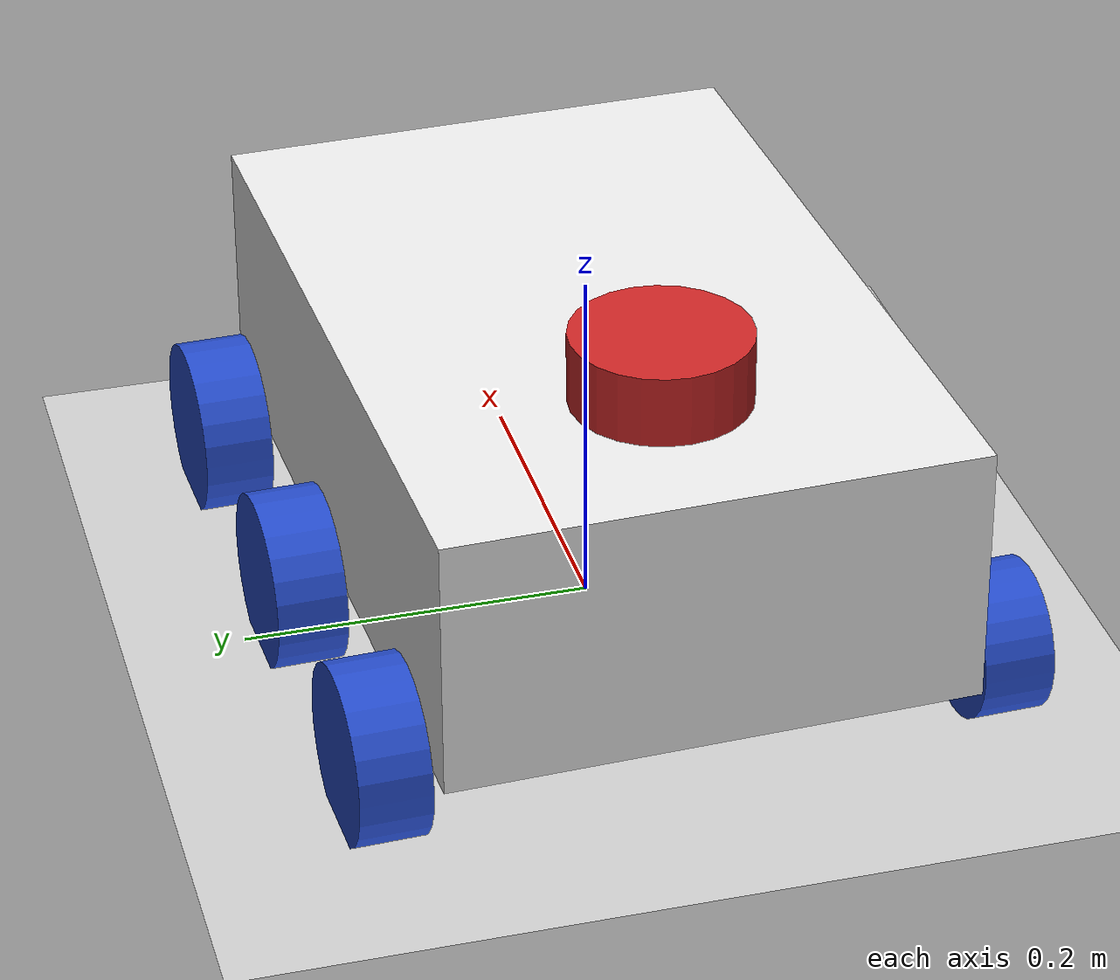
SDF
<sdf version="1.7">
 <world name="default">
  <model name="ground_plane">
   <static>1</static>
   <link name="link">
    <collision name="collision">
     <geometry><plane><normal>0 0 1</normal><size>100 100</size></plane></geometry>
     <surface>
      <contact><collide_bitmask>65535</collide_bitmask></contact>
      <friction><ode><mu>100</mu><mu2>50</mu2></ode></friction>
     </surface>
    </collision>
    <visual name="visual">
     <cast_shadows>0</cast_shadows>
     <geometry><plane><normal>0 0 1</normal><size>100 100</size></plane></geometry>
     <material>
      <script><uri>file://media/materials/scripts/gazebo.material</uri><name>Gazebo/Grey</name></script>
     </material>
    </visual>
   </link>
   <pose>6.49469 -2.5298 0 0 -0 0</pose>
  </model>
  <model name="my_bot">
   <link name="base_link">
    <inertial>
     <pose>-0.020833 0 0.091667 0 -0 0</pose>
     <mass>0.6</mass>
     <inertia>
      <ixx>0.00559667</ixx>
      <ixy>0</ixy>
      <ixz>0.00104167</ixz>
      <iyy>0.0115862</iyy>
      <iyz>0</iyz>
      <izz>0.0136146</izz>
     </inertia>
    </inertial>
    <collision name="base_link_fixed_joint_lump__chassis_collision">
     <pose>0 0 0.075 0 -0 0</pose>
     <geometry><box><size>0.45 0.3 0.15</size></box></geometry>
    </collision>
    <collision name="base_link_fixed_joint_lump__laser_frame_collision_1">
     <pose>-0.125 0 0.175 0 -0 0</pose>
     <geometry><cylinder><length>0.04</length><radius>0.05</radius></cylinder></geometry>
    </collision>
    <visual name="base_link_fixed_joint_lump__chassis_visual">
     <pose>0 0 0.075 0 -0 0</pose>
     <geometry><box><size>0.45 0.3 0.15</size></box></geometry>
     <material>
      <script><name>Gazebo/White</name><uri>file://media/materials/scripts/gazebo.material</uri></script>
     </material>
    </visual>
    <visual name="base_link_fixed_joint_lump__laser_frame_visual_1">
     <pose>-0.125 0 0.175 0 -0 0</pose>
     <geometry><cylinder><length>0.04</length><radius>0.05</radius></cylinder></geometry>
     <material>
      <script><name>Gazebo/Red</name><uri>file://media/materials/scripts/gazebo.material</uri></script>
     </material>
    </visual>
    <sensor name="laser" type="ray">
     <visualize>1</visualize>
     <update_rate>10</update_rate>
     <ray>
      <scan>
       <horizontal>
        <samples>360</samples>
        <min_angle>-3.14</min_angle>
        <max_angle>3.14</max_angle>
        <resolution>1</resolution>
       </horizontal>
       <vertical><samples>1</samples><min_angle>0</min_angle><max_angle>0</max_angle></vertical>
      </scan>
      <range><min>0.3</min><max>8</max></range>
     </ray>
     <plugin name="laser_controller" filename="libgazebo_ros_ray_sensor.so">
      <ros><argument>~/out:=scan</argument></ros>
      <output_type>sensor_msgs/LaserScan</output_type>
      <frame_name>laser_frame</frame_name>
     </plugin>
     <pose>-0.125 0 0.175 0 -0 0</pose>
    </sensor>
   </link>
   <joint name="back_left_wheel_joint" type="revolute">
    <pose relative_to="base_link">-0.175 0.175 0 -1.5708 0 0</pose>
    <parent>base_link</parent>
    <child>back_left_wheel</child>
    <axis>
     <xyz>0 0 1</xyz>
     <limit><lower>-1e+16</lower><upper>1e+16</upper></limit>
     <dynamics><spring_reference>0</spring_reference><spring_stiffness>0</spring_stiffness></dynamics>
    </axis>
   </joint>
   <link name="back_left_wheel">
    <pose relative_to="back_left_wheel_joint">0 0 0 0 -0 0</pose>
    <inertial>
     <mass>0.1</mass>
     <inertia>
      <ixx>5.84896e-05</ixx>
      <ixy>0</ixy>
      <ixz>0</ixz>
      <iyy>5.84896e-05</iyy>
      <iyz>0</iyz>
      <izz>9.03125e-05</izz>
     </inertia>
    </inertial>
    <collision name="back_left_wheel_collision">
     <geometry><cylinder><length>0.04</length><radius>0.0425</radius></cylinder></geometry>
    </collision>
    <visual name="back_left_wheel_visual">
     <geometry><cylinder><length>0.04</length><radius>0.05</radius></cylinder></geometry>
     <material>
      <script><name>Gazebo/Blue</name><uri>file://media/materials/scripts/gazebo.material</uri></script>
     </material>
    </visual>
   </link>
   <joint name="back_right_wheel_joint" type="revolute">
    <pose relative_to="base_link">-0.175 -0.175 0 1.5708 -0 0</pose>
    <parent>base_link</parent>
    <child>back_right_wheel</child>
    <axis>
     <xyz>0 0 -1</xyz>
     <limit><lower>-1e+16</lower><upper>1e+16</upper></limit>
     <dynamics><spring_reference>0</spring_reference><spring_stiffness>0</spring_stiffness></dynamics>
    </axis>
   </joint>
   <link name="back_right_wheel">
    <pose relative_to="back_right_wheel_joint">0 0 0 0 -0 0</pose>
    <inertial>
     <mass>0.1</mass>
     <inertia>
      <ixx>5.84896e-05</ixx>
      <ixy>0</ixy>
      <ixz>0</ixz>
      <iyy>5.84896e-05</iyy>
      <iyz>0</iyz>
      <izz>9.03125e-05</izz>
     </inertia>
    </inertial>
    <collision name="back_right_wheel_collision">
     <geometry><cylinder><length>0.04</length><radius>0.0425</radius></cylinder></geometry>
    </collision>
    <visual name="back_right_wheel_visual">
     <geometry><cylinder><length>0.04</length><radius>0.0425</radius></cylinder></geometry>
     <material>
      <script><name>Gazebo/Blue</name><uri>file://media/materials/scripts/gazebo.material</uri></script>
     </material>
    </visual>
   </link>
   <joint name="front_left_wheel_joint" type="revolute">
    <pose relative_to="base_link">0.175 0.175 0 -1.5708 0 0</pose>
    <parent>base_link</parent>
    <child>front_left_wheel</child>
    <axis>
     <xyz>0 0 1</xyz>
     <limit><lower>-1e+16</lower><upper>1e+16</upper></limit>
     <dynamics><spring_reference>0</spring_reference><spring_stiffness>0</spring_stiffness></dynamics>
    </axis>
   </joint>
   <link name="front_left_wheel">
    <pose relative_to="front_left_wheel_joint">0 0 0 0 -0 0</pose>
    <inertial>
     <mass>0.1</mass>
     <inertia>
      <ixx>5.84896e-05</ixx>
      <ixy>0</ixy>
      <ixz>0</ixz>
      <iyy>5.84896e-05</iyy>
      <iyz>0</iyz>
      <izz>9.03125e-05</izz>
     </inertia>
    </inertial>
    <collision name="front_left_wheel_collision">
     <geometry><cylinder><length>0.04</length><radius>0.0425</radius></cylinder></geometry>
    </collision>
    <visual name="front_left_wheel_visual">
     <geometry><cylinder><length>0.04</length><radius>0.05</radius></cylinder></geometry>
     <material>
      <script><name>Gazebo/Blue</name><uri>file://media/materials/scripts/gazebo.material</uri></script>
     </material>
    </visual>
   </link>
   <joint name="front_right_wheel_joint" type="revolute">
    <pose relative_to="base_link">0.175 -0.175 0 1.5708 -0 0</pose>
    <parent>base_link</parent>
    <child>front_right_wheel</child>
    <axis>
     <xyz>0 0 -1</xyz>
     <limit><lower>-1e+16</lower><upper>1e+16</upper></limit>
     <dynamics><spring_reference>0</spring_reference><spring_stiffness>0</spring_stiffness></dynamics>
    </axis>
   </joint>
   <link name="front_right_wheel">
    <pose relative_to="front_right_wheel_joint">0 0 0 0 -0 0</pose>
    <inertial>
     <mass>0.1</mass>
     <inertia>
      <ixx>5.84896e-05</ixx>
      <ixy>0</ixy>
      <ixz>0</ixz>
      <iyy>5.84896e-05</iyy>
      <iyz>0</iyz>
      <izz>9.03125e-05</izz>
     </inertia>
    </inertial>
    <collision name="front_right_wheel_collision">
     <geometry><cylinder><length>0.04</length><radius>0.0425</radius></cylinder></geometry>
    </collision>
    <visual name="front_right_wheel_visual">
     <geometry><cylinder><length>0.04</length><radius>0.0425</radius></cylinder></geometry>
     <material>
      <script><name>Gazebo/Blue</name><uri>file://media/materials/scripts/gazebo.material</uri></script>
     </material>
    </visual>
   </link>
   <joint name="left_wheel_joint" type="revolute">
    <pose relative_to="base_link">0 0.175 0 -1.5708 0 0</pose>
    <parent>base_link</parent>
    <child>left_wheel</child>
    <axis>
     <xyz>0 0 1</xyz>
     <limit><lower>-1e+16</lower><upper>1e+16</upper></limit>
     <dynamics><spring_reference>0</spring_reference><spring_stiffness>0</spring_stiffness></dynamics>
    </axis>
   </joint>
   <link name="left_wheel">
    <pose relative_to="left_wheel_joint">0 0 0 0 -0 0</pose>
    <inertial>
     <mass>0.1</mass>
     <inertia>
      <ixx>5.84896e-05</ixx>
      <ixy>0</ixy>
      <ixz>0</ixz>
      <iyy>5.84896e-05</iyy>
      <iyz>0</iyz>
      <izz>9.03125e-05</izz>
     </inertia>
    </inertial>
    <collision name="left_wheel_collision">
     <geometry><cylinder><length>0.04</length><radius>0.0425</radius></cylinder></geometry>
    </collision>
    <visual name="left_wheel_visual">
     <geometry><cylinder><length>0.04</length><radius>0.05</radius></cylinder></geometry>
     <material>
      <script><name>Gazebo/Blue</name><uri>file://media/materials/scripts/gazebo.material</uri></script>
     </material>
    </visual>
   </link>
   <joint name="right_wheel_joint" type="revolute">
    <pose relative_to="base_link">0 -0.175 0 1.5708 -0 0</pose>
    <parent>base_link</parent>
    <child>right_wheel</child>
    <axis>
     <xyz>0 0 -1</xyz>
     <limit><lower>-1e+16</lower><upper>1e+16</upper></limit>
     <dynamics><spring_reference>0</spring_reference><spring_stiffness>0</spring_stiffness></dynamics>
    </axis>
   </joint>
   <link name="right_wheel">
    <pose relative_to="right_wheel_joint">0 0 0 0 -0 0</pose>
    <inertial>
     <mass>0.1</mass>
     <inertia>
      <ixx>5.84896e-05</ixx>
      <ixy>0</ixy>
      <ixz>0</ixz>
      <iyy>5.84896e-05</iyy>
      <iyz>0</iyz>
      <izz>9.03125e-05</izz>
     </inertia>
    </inertial>
    <collision name="right_wheel_collision">
     <geometry><cylinder><length>0.04</length><radius>0.0425</radius></cylinder></geometry>
    </collision>
    <visual name="right_wheel_visual">
     <geometry><cylinder><length>0.04</length><radius>0.0425</radius></cylinder></geometry>
     <material>
      <script><name>Gazebo/Blue</name><uri>file://media/materials/scripts/gazebo.material</uri></script>
     </material>
    </visual>
   </link>
   <static>0</static>
   <plugin name="differential_drive_controller" filename="libgazebo_ros_diff_drive.so">
    <num_wheel_pairs>3</num_wheel_pairs>
    <left_joint>front_left_wheel_joint</left_joint>
    <left_joint>left_wheel_joint</left_joint>
    <left_joint>back_left_wheel_joint</left_joint>
    <right_joint>front_right_wheel_joint</right_joint>
    <right_joint>right_wheel_joint</right_joint>
    <right_joint>back_right_wheel_joint</right_joint>
    <wheel_separation>0.35</wheel_separation>
    <wheel_diameter>0.85</wheel_diameter>
    <max_wheel_torque>200</max_wheel_torque>
    <max_wheel_acceleration>10.0</max_wheel_acceleration>
    <odometry_frame>odom</odometry_frame>
    <robot_base_frame>base_link</robot_base_frame>
    <publish_odom>1</publish_odom>
    <publish_odom_tf>1</publish_odom_tf>
    <publish_wheel_tf>1</publish_wheel_tf>
   </plugin>
   <pose>0.001574 -0.002371 0.042497 -1.7e-05 -3.2e-05 0.039341</pose>
  </model>
 </world>
</sdf>
